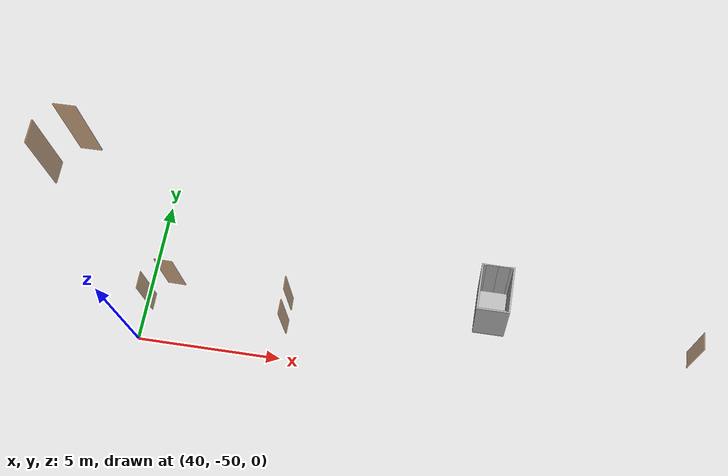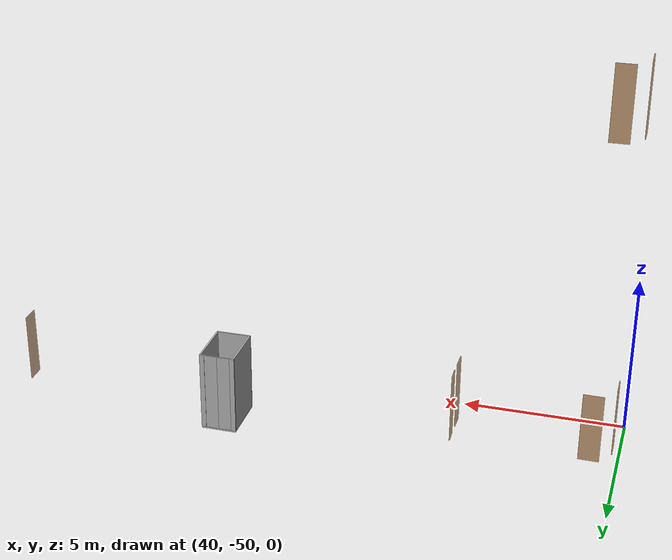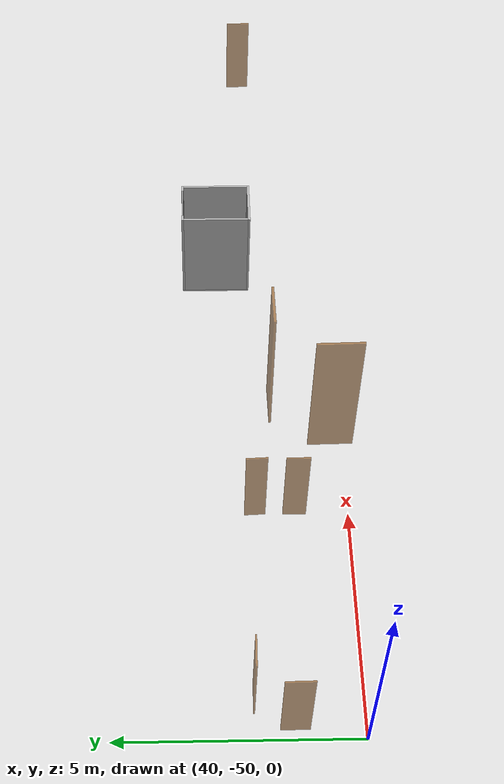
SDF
<sdf version="1.7">
 <world name="sim_world">
  <model name="door22">
   <pose>40.84886749938164 -47.81650821195254 0.0 0 0 3.127897356564713</pose>
   <link name="right">
    <pose>0 0 1.11 0 0 0</pose>
    <visual name="right_visual">
     <geometry><box><size>0.631252110748588 0.03 2.2</size></box></geometry>
     <material>
      <ambient>0.5 0.25 0 0.6</ambient>
      <diffuse>0.5 0.25 0 0.6</diffuse>
      <pbr><metal><metalness>0.0</metalness></metal></pbr>
     </material>
    </visual>
    <collision name="right_collision">
     <geometry><box><size>0.631252110748588 0.03 2.2</size></box></geometry>
     <surface><contact><collide_bitmask>0x02</collide_bitmask></contact></surface>
    </collision>
    <inertial>
     <mass>50.0</mass>
     <inertia><ixx>20.17041666666667</ixx><iyy>21.826996780518954</iyy><izz>1.6640801138522818</izz></inertia>
    </inertial>
   </link>
   <joint name="right_joint" type="revolute">
    <parent>world</parent>
    <child>right</child>
    <axis><xyz>0 0 1</xyz><limit><lower>0</lower><upper>1.57</upper></limit></axis>
    <pose>0.320626055374294 0 0 0 0 0</pose>
   </joint>
   <plugin name="register_component" filename="libregister_component.so">
    <component name="Door">
     <v_max_door>0.5</v_max_door>
     <a_max_door>0.3</a_max_door>
     <a_nom_door>0.15</a_nom_door>
     <dx_min_door>0.01</dx_min_door>
     <f_max_door>500.0</f_max_door>
     <ros_interface>true</ros_interface>
     <door name="door22" type="SwingDoor" left_joint_name="empty_joint" right_joint_name="right_joint"/>
    </component>
   </plugin>
  </model>
  <model name="door23_end">
   <pose>40.216500862856336 -48.60354288504393 0.0 0 0 1.5856953258611415</pose>
   <link name="right">
    <pose>0 0 1.11 0 0 0</pose>
    <visual name="right_visual">
     <geometry><box><size>0.5891750900136934 0.03 2.2</size></box></geometry>
     <material>
      <ambient>0.5 0.25 0 0.6</ambient>
      <diffuse>0.5 0.25 0 0.6</diffuse>
      <pbr><metal><metalness>0.0</metalness></metal></pbr>
     </material>
    </visual>
    <collision name="right_collision">
     <geometry><box><size>0.5891750900136934 0.03 2.2</size></box></geometry>
     <surface><contact><collide_bitmask>0x02</collide_bitmask></contact></surface>
    </collision>
    <inertial>
     <mass>50.0</mass>
     <inertia><ixx>20.17041666666667</ixx><iyy>21.61303036121935</iyy><izz>1.4501136945526822</izz></inertia>
    </inertial>
   </link>
   <joint name="right_joint" type="revolute">
    <parent>world</parent>
    <child>right</child>
    <axis><xyz>0 0 1</xyz><limit><lower>0</lower><upper>1.57</upper></limit></axis>
    <pose>0.2995875450068467 0 0 0 0 0</pose>
   </joint>
   <plugin name="register_component" filename="libregister_component.so">
    <component name="Door">
     <v_max_door>0.5</v_max_door>
     <a_max_door>0.3</a_max_door>
     <a_nom_door>0.15</a_nom_door>
     <dx_min_door>0.01</dx_min_door>
     <f_max_door>500.0</f_max_door>
     <ros_interface>true</ros_interface>
     <door name="door23_end" type="SwingDoor" left_joint_name="empty_joint" right_joint_name="right_joint"/>
    </component>
   </plugin>
  </model>
  <model name="door39">
   <pose>45.0316720284141 -47.97852345123005 0.0 0 0 1.6144533395293716</pose>
   <link name="right">
    <pose>0 0 1.11 0 0 0</pose>
    <visual name="right_visual">
     <geometry><box><size>0.4542000510396327 0.03 2.2</size></box></geometry>
     <material>
      <ambient>0.5 0.25 0 0.6</ambient>
      <diffuse>0.5 0.25 0 0.6</diffuse>
      <pbr><metal><metalness>0.0</metalness></metal></pbr>
     </material>
    </visual>
    <collision name="right_collision">
     <geometry><box><size>0.4542000510396327 0.03 2.2</size></box></geometry>
     <surface><contact><collide_bitmask>0x02</collide_bitmask></contact></surface>
    </collision>
    <inertial>
     <mass>50.0</mass>
     <inertia><ixx>20.17041666666667</ixx><iyy>21.02624035985169</iyy><izz>0.8633236931850207</izz></inertia>
    </inertial>
   </link>
   <joint name="right_joint" type="revolute">
    <parent>world</parent>
    <child>right</child>
    <axis><xyz>0 0 -1</xyz><limit><lower>0</lower><upper>1.57</upper></limit></axis>
    <pose>0.23210002551981634 0 0 0 0 0</pose>
   </joint>
   <plugin name="register_component" filename="libregister_component.so">
    <component name="Door">
     <v_max_door>0.5</v_max_door>
     <a_max_door>0.3</a_max_door>
     <a_nom_door>0.15</a_nom_door>
     <dx_min_door>0.01</dx_min_door>
     <f_max_door>500.0</f_max_door>
     <ros_interface>true</ros_interface>
     <door name="door39" type="SwingDoor" left_joint_name="empty_joint" right_joint_name="right_joint"/>
    </component>
   </plugin>
  </model>
  <model name="door40">
   <pose>45.02812160501311 -48.830335236984276 0.0 0 0 1.565711337570364</pose>
   <link name="right">
    <pose>0 0 1.11 0 0 0</pose>
    <visual name="right_visual">
     <geometry><box><size>0.5029776016298969 0.03 2.2</size></box></geometry>
     <material>
      <ambient>0.5 0.25 0 0.6</ambient>
      <diffuse>0.5 0.25 0 0.6</diffuse>
      <pbr><metal><metalness>0.0</metalness></metal></pbr>
     </material>
    </visual>
    <collision name="right_collision">
     <geometry><box><size>0.5029776016298969 0.03 2.2</size></box></geometry>
     <surface><contact><collide_bitmask>0x02</collide_bitmask></contact></surface>
    </collision>
    <inertial>
     <mass>50.0</mass>
     <inertia><ixx>20.17041666666667</ixx><iyy>21.22077694892235</iyy><izz>1.0578602822556806</izz></inertia>
    </inertial>
   </link>
   <joint name="right_joint" type="revolute">
    <parent>world</parent>
    <child>right</child>
    <axis><xyz>0 0 -1</xyz><limit><lower>0</lower><upper>1.57</upper></limit></axis>
    <pose>0.25648880081494846 0 0 0 0 0</pose>
   </joint>
   <plugin name="register_component" filename="libregister_component.so">
    <component name="Door">
     <v_max_door>0.5</v_max_door>
     <a_max_door>0.3</a_max_door>
     <a_nom_door>0.15</a_nom_door>
     <dx_min_door>0.01</dx_min_door>
     <f_max_door>500.0</f_max_door>
     <ros_interface>true</ros_interface>
     <door name="door40" type="SwingDoor" left_joint_name="empty_joint" right_joint_name="right_joint"/>
    </component>
   </plugin>
  </model>
  <model name="door45">
   <pose>58.86732422546709 -47.953395148465546 0.0 0 0 1.5856034779132602</pose>
   <link name="right">
    <pose>0 0 1.11 0 0 0</pose>
    <visual name="right_visual">
     <geometry><box><size>0.5772319475344877 0.03 2.2</size></box></geometry>
     <material>
      <ambient>0.5 0.25 0 0.6</ambient>
      <diffuse>0.5 0.25 0 0.6</diffuse>
      <pbr><metal><metalness>0.0</metalness></metal></pbr>
     </material>
    </visual>
    <collision name="right_collision">
     <geometry><box><size>0.5772319475344877 0.03 2.2</size></box></geometry>
     <surface><contact><collide_bitmask>0x02</collide_bitmask></contact></surface>
    </collision>
    <inertial>
     <mass>50.0</mass>
     <inertia><ixx>20.17041666666667</ixx><iyy>21.554986338560244</iyy><izz>1.3920696718935732</izz></inertia>
    </inertial>
   </link>
   <joint name="right_joint" type="revolute">
    <parent>world</parent>
    <child>right</child>
    <axis><xyz>0 0 1</xyz><limit><lower>0</lower><upper>1.57</upper></limit></axis>
    <pose>0.29361597376724385 0 0 0 0 0</pose>
   </joint>
   <plugin name="register_component" filename="libregister_component.so">
    <component name="Door">
     <v_max_door>0.5</v_max_door>
     <a_max_door>0.3</a_max_door>
     <a_nom_door>0.15</a_nom_door>
     <dx_min_door>0.01</dx_min_door>
     <f_max_door>500.0</f_max_door>
     <ros_interface>true</ros_interface>
     <door name="door45" type="SwingDoor" left_joint_name="empty_joint" right_joint_name="right_joint"/>
    </component>
   </plugin>
  </model>
  <model name="N1_door12">
   <pose>40.83631374547366 -47.783362157011254 10.0 0 0 -3.1286489684968375</pose>
   <link name="right">
    <pose>0 0 1.11 0 0 0</pose>
    <visual name="right_visual">
     <geometry><box><size>0.5710684518580249 0.03 2.2</size></box></geometry>
     <material>
      <ambient>0.5 0.25 0 0.6</ambient>
      <diffuse>0.5 0.25 0 0.6</diffuse>
      <pbr><metal><metalness>0.0</metalness></metal></pbr>
     </material>
    </visual>
    <collision name="right_collision">
     <geometry><box><size>0.5710684518580249 0.03 2.2</size></box></geometry>
     <surface><contact><collide_bitmask>0x02</collide_bitmask></contact></surface>
    </collision>
    <inertial>
     <mass>50.0</mass>
     <inertia><ixx>20.17041666666667</ixx><iyy>21.525496569614674</iyy><izz>1.3625799029480057</izz></inertia>
    </inertial>
   </link>
   <joint name="right_joint" type="revolute">
    <parent>world</parent>
    <child>right</child>
    <axis><xyz>0 0 1</xyz><limit><lower>0</lower><upper>1.57</upper></limit></axis>
    <pose>0.29053422592901246 0 0 0 0 0</pose>
   </joint>
   <plugin name="register_component" filename="libregister_component.so">
    <component name="Door">
     <v_max_door>0.5</v_max_door>
     <a_max_door>0.3</a_max_door>
     <a_nom_door>0.15</a_nom_door>
     <dx_min_door>0.01</dx_min_door>
     <f_max_door>500.0</f_max_door>
     <ros_interface>true</ros_interface>
     <door name="N1_door12" type="SwingDoor" left_joint_name="empty_joint" right_joint_name="right_joint"/>
    </component>
   </plugin>
  </model>
  <model name="N1_door13_end">
   <pose>40.1975593199231 -48.5869645045281 10.0 0 0 1.5893069165039657</pose>
   <link name="right">
    <pose>0 0 1.11 0 0 0</pose>
    <visual name="right_visual">
     <geometry><box><size>0.6107248989328073 0.03 2.2</size></box></geometry>
     <material>
      <ambient>0.5 0.25 0 0.6</ambient>
      <diffuse>0.5 0.25 0 0.6</diffuse>
      <pbr><metal><metalness>0.0</metalness></metal></pbr>
     </material>
    </visual>
    <collision name="right_collision">
     <geometry><box><size>0.6107248989328073 0.03 2.2</size></box></geometry>
     <surface><contact><collide_bitmask>0x02</collide_bitmask></contact></surface>
    </collision>
    <inertial>
     <mass>50.0</mass>
     <inertia><ixx>20.17041666666667</ixx><iyy>21.72077042573537</iyy><izz>1.5578537590686992</izz></inertia>
    </inertial>
   </link>
   <joint name="right_joint" type="revolute">
    <parent>world</parent>
    <child>right</child>
    <axis><xyz>0 0 1</xyz><limit><lower>0</lower><upper>1.57</upper></limit></axis>
    <pose>0.3103624494664037 0 0 0 0 0</pose>
   </joint>
   <plugin name="register_component" filename="libregister_component.so">
    <component name="Door">
     <v_max_door>0.5</v_max_door>
     <a_max_door>0.3</a_max_door>
     <a_nom_door>0.15</a_nom_door>
     <dx_min_door>0.01</dx_min_door>
     <f_max_door>500.0</f_max_door>
     <ros_interface>true</ros_interface>
     <door name="N1_door13_end" type="SwingDoor" left_joint_name="empty_joint" right_joint_name="right_joint"/>
    </component>
   </plugin>
  </model>
  <model name="lift">
   <link name="platform">
    <inertial>
     <mass>1200</mass>
     <inertia><ixx>121.25000000000001</ixx><iyy>256.25000000000006</iyy><izz>377.00000000000006</izz></inertia>
    </inertial>
    <visual name="floor_visual">
     <pose>0 0 -0.025 0 0 0</pose>
     <geometry><box><size>1.1 1.6 0.05</size></box></geometry>
     <material>
      <ambient>0.5 0.5 0.5 1</ambient>
      <diffuse>0.7 0.7 0.7 1</diffuse>
      <specular>0.6 0.6 0.6 1</specular>
      <emissive>0.1 0.1 0.1 1</emissive>
     </material>
    </visual>
    <collision name="floor_collision">
     <pose>0 0 -0.025 0 0 0</pose>
     <geometry><box><size>1.1 1.6 0.05</size></box></geometry>
     <surface><contact><collide_bitmask>0x01</collide_bitmask></contact></surface>
    </collision>
    <visual name="frontwall1_visual">
     <pose>-0.47500000000000003 0.775 1.25 0 0 0</pose>
     <geometry><box><size>0.15000000000000002 0.05 2.5</size></box></geometry>
     <material>
      <ambient>0.5 0.5 0.5 1</ambient>
      <diffuse>0.7 0.7 0.7 1</diffuse>
      <specular>0.6 0.6 0.6 1</specular>
      <emissive>0.1 0.1 0.1 1</emissive>
     </material>
    </visual>
    <collision name="frontwall1_collision">
     <pose>-0.47500000000000003 0.775 1.25 0 0 0</pose>
     <geometry><box><size>0.15000000000000002 0.05 2.5</size></box></geometry>
     <surface><contact><collide_bitmask>0x01</collide_bitmask></contact></surface>
    </collision>
    <visual name="frontwall2_visual">
     <pose>0.47500000000000003 0.775 1.25 0 0 0</pose>
     <geometry><box><size>0.15000000000000002 0.05 2.5</size></box></geometry>
     <material>
      <ambient>0.5 0.5 0.5 1</ambient>
      <diffuse>0.7 0.7 0.7 1</diffuse>
      <specular>0.6 0.6 0.6 1</specular>
      <emissive>0.1 0.1 0.1 1</emissive>
     </material>
    </visual>
    <collision name="frontwall2_collision">
     <pose>0.47500000000000003 0.775 1.25 0 0 0</pose>
     <geometry><box><size>0.15000000000000002 0.05 2.5</size></box></geometry>
     <surface><contact><collide_bitmask>0x01</collide_bitmask></contact></surface>
    </collision>
    <visual name="backwall1_visual">
     <pose>0.0 -0.775 1.25 0 0 0</pose>
     <geometry><box><size>1.1 0.05 2.5</size></box></geometry>
     <material>
      <ambient>0.5 0.5 0.5 1</ambient>
      <diffuse>0.7 0.7 0.7 1</diffuse>
      <specular>0.6 0.6 0.6 1</specular>
      <emissive>0.1 0.1 0.1 1</emissive>
     </material>
    </visual>
    <collision name="backwall1_collision">
     <pose>0.0 -0.775 1.25 0 0 0</pose>
     <geometry><box><size>1.1 0.05 2.5</size></box></geometry>
     <surface><contact><collide_bitmask>0x01</collide_bitmask></contact></surface>
    </collision>
    <visual name="leftwall1_visual">
     <pose>-0.525 0.0 1.25 0 0 1.5707963267948966</pose>
     <geometry><box><size>1.5 0.05 2.5</size></box></geometry>
     <material>
      <ambient>0.5 0.5 0.5 1</ambient>
      <diffuse>0.7 0.7 0.7 1</diffuse>
      <specular>0.6 0.6 0.6 1</specular>
      <emissive>0.1 0.1 0.1 1</emissive>
     </material>
    </visual>
    <collision name="leftwall1_collision">
     <pose>-0.525 0.0 1.25 0 0 1.5707963267948966</pose>
     <geometry><box><size>1.5 0.05 2.5</size></box></geometry>
     <surface><contact><collide_bitmask>0x01</collide_bitmask></contact></surface>
    </collision>
    <visual name="rightwall1_visual">
     <pose>0.525 0.0 1.25 0 0 1.5707963267948966</pose>
     <geometry><box><size>1.5 0.05 2.5</size></box></geometry>
     <material>
      <ambient>0.5 0.5 0.5 1</ambient>
      <diffuse>0.7 0.7 0.7 1</diffuse>
      <specular>0.6 0.6 0.6 1</specular>
      <emissive>0.1 0.1 0.1 1</emissive>
     </material>
    </visual>
    <collision name="rightwall1_collision">
     <pose>0.525 0.0 1.25 0 0 1.5707963267948966</pose>
     <geometry><box><size>1.5 0.05 2.5</size></box></geometry>
     <surface><contact><collide_bitmask>0x01</collide_bitmask></contact></surface>
    </collision>
   </link>
   <joint name="cabin_joint" type="prismatic">
    <parent>world</parent>
    <child>platform</child>
    <axis><xyz>0 0 1</xyz></axis>
   </joint>
   <model name="CabinDoor_lift_door_lift">
    <pose>0.0 0.775 0 0 0 0.0</pose>
    <link name="right_door">
     <pose>0.2 0 1.25 0 0 0</pose>
     <visual name="right_door_visual">
      <geometry><box><size>0.4 0.03 2.5</size></box></geometry>
      <material>
       <ambient>0.5 0.5 0.5 1</ambient>
       <diffuse>0.7 0.7 0.7 1</diffuse>
       <specular>0.6 0.6 0.6 1</specular>
       <emissive>0.1 0.1 0.1 1</emissive>
      </material>
     </visual>
     <collision name="right_door_collision">
      <geometry><box><size>0.4 0.03 2.5</size></box></geometry>
      <surface><contact><collide_bitmask>0x02</collide_bitmask></contact></surface>
     </collision>
    </link>
    <link name="left_door">
     <pose>-0.2 0 1.25 0 0 0</pose>
     <visual name="left_door_visual">
      <geometry><box><size>0.4 0.03 2.5</size></box></geometry>
      <material>
       <ambient>0.5 0.5 0.5 1</ambient>
       <diffuse>0.7 0.7 0.7 1</diffuse>
       <specular>0.6 0.6 0.6 1</specular>
       <emissive>0.1 0.1 0.1 1</emissive>
      </material>
     </visual>
     <collision name="left_door_collision">
      <geometry><box><size>0.4 0.03 2.5</size></box></geometry>
      <surface><contact><collide_bitmask>0x02</collide_bitmask></contact></surface>
     </collision>
    </link>
    <plugin name="register_component" filename="libregister_component.so">
     <component name="Door">
      <v_max_door>0.3</v_max_door>
      <a_max_door>0.2</a_max_door>
      <a_nom_door>0.1</a_nom_door>
      <dx_min_door>0.0001</dx_min_door>
      <f_max_door>35.0</f_max_door>
      <door left_joint_name="CabinDoor_lift_door_lift_left_joint" name="CabinDoor_lift_door_lift" right_joint_name="CabinDoor_lift_door_lift_right_joint" type="DoubleSlidingDoor"/>
     </component>
    </plugin>
   </model>
   <joint name="CabinDoor_lift_door_lift_right_joint" type="prismatic">
    <parent>platform</parent>
    <child>CabinDoor_lift_door_lift::right_door</child>
    <axis><xyz>1 0 0</xyz><limit><lower>0</lower><upper>0.4</upper></limit></axis>
   </joint>
   <joint name="CabinDoor_lift_door_lift_left_joint" type="prismatic">
    <parent>platform</parent>
    <child>CabinDoor_lift_door_lift::left_door</child>
    <axis><xyz>1 0 0</xyz><limit><lower>-0.4</lower><upper>0</upper></limit></axis>
   </joint>
   <plugin name="register_component" filename="libregister_component.so">
    <component name="Lift">
     <lift_name>lift</lift_name>
     <floor name="TD_n0" elevation="0.0">
      <door_pair cabin_door="CabinDoor_lift_door_lift" shaft_door="ShaftDoor_lift_TD_n0_door_lift"/>
     </floor>
     <floor name="TD_n1" elevation="10.0">
      <door_pair cabin_door="CabinDoor_lift_door_lift" shaft_door="ShaftDoor_lift_TD_n1_door_lift"/>
     </floor>
     <initial_floor>TD_n0</initial_floor>
     <v_max_cabin>2.0</v_max_cabin>
     <a_max_cabin>1.2</a_max_cabin>
     <a_nom_cabin>1.0</a_nom_cabin>
     <dx_min_cabin>0.001</dx_min_cabin>
     <f_max_cabin>25323.0</f_max_cabin>
     <cabin_joint_name>cabin_joint</cabin_joint_name>
    </component>
   </plugin>
   <pose>51.9666053711237 -47.24236851920336 0 0 0 0.0</pose>
  </model>
 </world>
</sdf>
